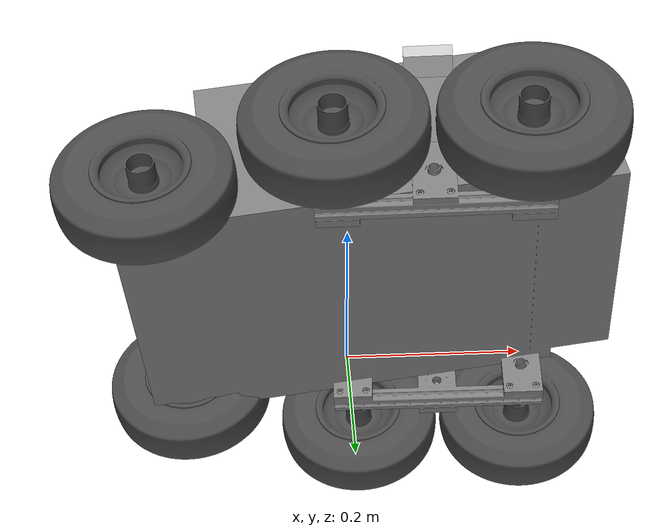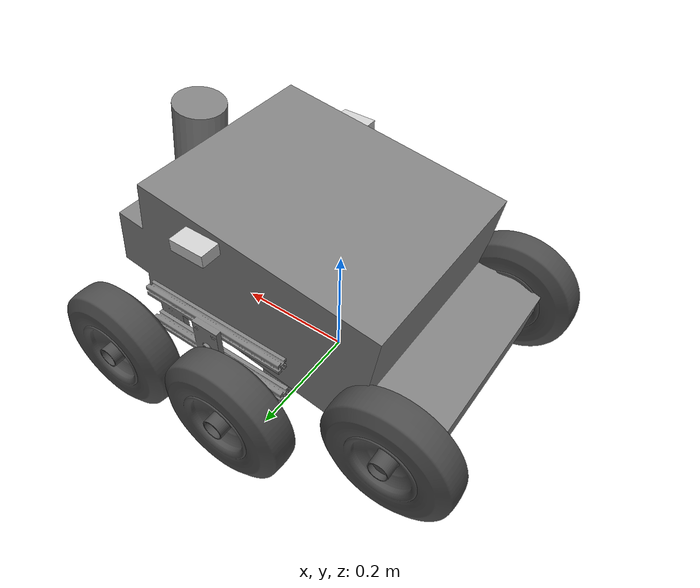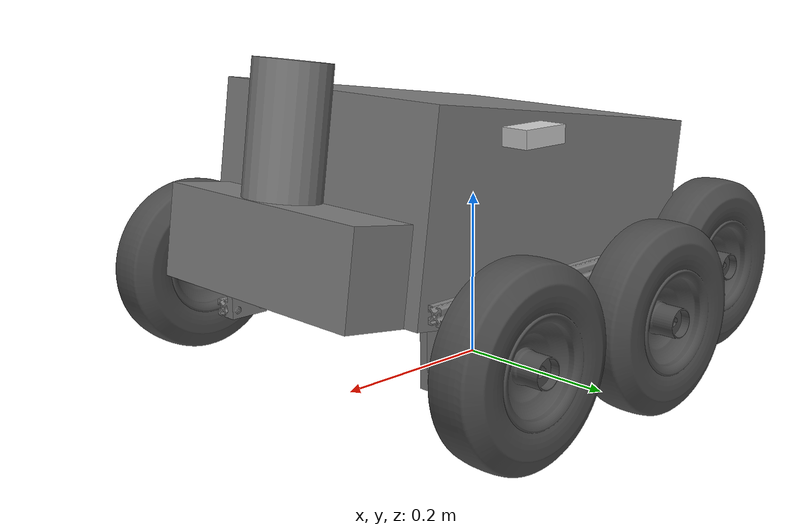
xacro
<?xml version="1.0"?>
<robot xmlns:xacro="http://ros.org/wiki/xacro"
       xmlns:controller="http://playerstage.sourceforge.net/gazebo/xmlschema/#controller"
       xmlns:interface="http://playerstage.sourceforge.net/gazebo/xmlschema/#interface"
       xmlns:sensor="http://playerstage.sourceforge.net/gazebo/xmlschema/#sensor"
       name="pluto">

  <xacro:include filename="$(find uos_common_urdf)/common.xacro" />
  <xacro:include filename="$(find uos_common_urdf)/urdf/imu.gazebo.urdf.xacro" />
  <!--xacro:include filename="$(find riegl_driver)/urdf/riegl_vz400i_mount.urdf.xacro" /-->
  <xacro:include filename="$(find pluto_description)/urdf/wheel.urdf.xacro" />

  <xacro:property name="M_PI" value="3.14159265359"/>

  <xacro:property name="footprint_to_base_rpy_p" value="-0.142"/>

  <xacro:property name="imu_stdev" value="0.00017" />

  <xacro:property name="body_height" value="0.21"/>
  <xacro:property name="body_length" value="0.592"/>
  <xacro:property name="body_width" value="0.29"/>

  <xacro:property name="horizontal_lever_height" value="0.09"/>
  <xacro:property name="horizontal_lever_length" value="0.266"/>
  <xacro:property name="horizontal_lever_thickness" value="0.04"/>
  <xacro:property name="horizontal_lever_mass" value="0.1"/>

  <xacro:property name="vertical_lever_height" value="0.21"/>
  <xacro:property name="vertical_lever_width" value="0.09"/>

  <xacro:property name="bearing_pos_wheel_1" value="0.047"/>
  <xacro:property name="bearing_pos_wheel_2_3" value="0.075"/>

  <xacro:property name="bearing_width" value="0.05"/>
  <xacro:property name="bearing_height" value="0.09"/>
  <xacro:property name="bearing_thickness" value="0.01"/>

  <xacro:property name="pannel_length" value="0.32"/>
  <xacro:property name="pannel_height" value="0.09"/>
  <xacro:property name="pannel_depth" value="0.082"/>

  <xacro:property name="riegl_vz400i_offset_x"
    value="${body_width/2 - 0.1}"/>
  <xacro:property name="riegl_vz400i_offset_y"
    value="0"/>
  <xacro:property name="riegl_vz400i_offset_z"
    value="${body_height/2-0.014 + 0.012}"/>

  <xacro:property name="velodyne_height" value="0.1442"/>
  <xacro:property name="velodyne_radius" value="0.04265"/>

  <xacro:property name="velodyne_height_to_lense" value="0.090805"/>
  <xacro:property name="velodyne_offset_x" value="${body_length/2 - 0.0265 + 0.02}"/>
  <xacro:property name="velodyne_offset_y" value="0"/>
  <xacro:property name="velodyne_offset_z"
    value="${-0.005 + velodyne_height/2}"/>

  <xacro:property name="virtual_axis_left_offset_x"
    value="${body_length/2 - pannel_depth-bearing_pos_wheel_2_3
      - bearing_height/2}"/>
  <xacro:property name="virtual_axis_left_offset_y"
    value="${body_width/2 + 0.03}" />
  <xacro:property name="virtual_axis_left_offset_z"
    value="${body_height/2-(vertical_lever_height + 0.03
      - bearing_width/2)}" />

  <xacro:property name="virtual_axis_right_offset_x"
    value="${body_length/2 - pannel_depth - bearing_pos_wheel_2_3
      - bearing_height/2}"/>
  <xacro:property name="virtual_axis_right_offset_y"
    value="${-(body_width/2 + 0.03)}"/>
  <xacro:property name="virtual_axis_right_offset_z"
    value="${body_height/2 -(vertical_lever_height + 0.03
      - bearing_width/2)}"/>

  <xacro:property name="axis_length" value="0.47" />
  <xacro:property name="turning_adaptation" value="0.95" />

  <xacro:property name="body_mass" value="40.0"/>
  <xacro:property name="wheel_mass" value="3.0"/>
  <xacro:property name="wheel_radius" value="0.103"/>
  <xacro:property name="wheel_thickness" value="0.065"/>

  <xacro:property name="imu_center_offset_x" value="${body_length/2 - 0.285}"/>
  <xacro:property name="imu_center_offset_y" value="0"/>
  <xacro:property name="imu_center_offset_z" value="${- body_height/2 + 0.03}"/>

  <xacro:property name="imu_left_offset_x" value="0.1"/>
  <xacro:property name="imu_left_offset_y" value="0.2"/>
  <xacro:property name="imu_left_offset_z" value="0.05"/>

  <xacro:property name="imu_right_offset_x" value="0.1"/>
  <xacro:property name="imu_right_offset_y" value="-0.2"/>
  <xacro:property name="imu_right_offset_z" value="0.05"/>

  <link name="base_footprint"/>
  <link name="base_link">
    <visual>
      <origin xyz="0 0 0" rpy="0 0 0" />
      <geometry>
        <mesh filename="package://pluto_description/meshes/pluto_base.stl"/>
      </geometry>
      <material name="silver" >
        <color rgba="0.5 0.5 0.5 1" />
        <ambient>0.5 0.5 0.5 1</ambient>
        <diffuse>0.5 0.5 0.5 1</diffuse>
        <specular>0 0 0 0</specular>
        <emissive>0 0 0 1</emissive>
      </material>
    </visual>
    <collision>
      <origin xyz="0 0 0" rpy="0 0 0" />
      <geometry>
        <mesh filename="package://pluto_description/meshes/pluto_base_collision.stl"/>
      </geometry>
    </collision>
    <xacro:box_inertial
      x="${body_length}"
      y="${body_width}"
      z="${body_height}"
      mass="${body_mass}"/>
  </link>

  <gazebo reference="base_link">
    <material>Gazebo/GreyTransparent</material>
  </gazebo>

  <joint name="base_footprint_to_base_joint" type="fixed">
    <!-- origin xyz="0 0 0.2" rpy="0 ${-M_PI/18.0} 0" /-->
    <origin xyz="0 0 0.2" rpy="0 ${footprint_to_base_rpy_p} 0" />
    <parent link="base_footprint"/>
    <child link="base_link" />
  </joint>

  <!--Virtual Axis Macro-->

  <xacro:macro name="virtual_axis" params="side xyz rot">
    <link name="virtual_axis_${side}">
      <visual>
        <origin xyz="0 0 0" rpy="0 0 ${rot}" />
        <geometry>
          <mesh filename="package://pluto_description/meshes/pluto_lever.stl"/>
        </geometry>
        <material name="silver" >
          <color rgba="0.5 0.5 0.5 1" />
        </material>
      </visual>
      <collision>
        <origin xyz="0 0 0" rpy="0 0 ${rot}" />
        <geometry>
          <mesh filename="package://pluto_description/meshes/pluto_lever_collision.stl"/>
        </geometry>
      </collision>
      <xacro:box_inertial
        x="${horizontal_lever_length}"
        y="${horizontal_lever_thickness}"
        z="${horizontal_lever_height}"
        mass="${horizontal_lever_mass}"/>
    </link>

    <gazebo reference="virtual_axis_${side}">
      <material>Gazebo/GreyTransparent</material>
    </gazebo>

    <joint name="virtual_${side}_to_base_joint" type="revolute">
      <origin xyz="${xyz}"
        rpy="0 ${-footprint_to_base_rpy_p} 0" />
      <axis xyz="0 1 0"/>
      <limit effort="1000" lower="-0.4" upper="0.4" velocity="10"/>
      <parent link="base_link"/>
      <child link="virtual_axis_${side}"/>
    </joint>
  </xacro:macro>
  <!-- set initial rot to  footprint_to_base_rpy_p -->
  <xacro:virtual_axis
    side="left"
    xyz=" ${virtual_axis_left_offset_x}
          ${virtual_axis_left_offset_y}
          ${virtual_axis_left_offset_z}"
    rot="${M_PI}"/>

  <xacro:virtual_axis
    side="right"
    xyz=" ${virtual_axis_right_offset_x}
          ${virtual_axis_right_offset_y}
          ${virtual_axis_right_offset_z}"
    rot="0"/>

  <xacro:pluto_wheel name="left_front_wheel" parent="virtual_axis_left">
    <origin xyz="0.1075 0.095 0" rpy="0 0 0" />
  </xacro:pluto_wheel>

  <xacro:pluto_wheel name="left_middle_wheel" parent="virtual_axis_left">
    <origin xyz="-0.1075 0.095 0" rpy="0 0 0 "/>
  </xacro:pluto_wheel>

  <xacro:pluto_wheel name="left_rear_wheel" parent="base_link">
    <origin xyz="-0.23 0.19 ${(-body_height/2.0)+(bearing_height/2.0)}" rpy="0 0 0" />
  </xacro:pluto_wheel>

  <xacro:pluto_wheel name="right_front_wheel" parent="virtual_axis_right">
    <origin xyz="0.1075 -0.095 0" rpy="0 0 0" />
  </xacro:pluto_wheel>

  <xacro:pluto_wheel name="right_middle_wheel" parent="virtual_axis_right">
    <origin xyz="-0.1075 -0.095 0" rpy="0 0 0" />
  </xacro:pluto_wheel>

  <xacro:pluto_wheel name="right_rear_wheel" parent="base_link">
    <origin xyz="-0.23 -0.19 ${(-body_height/2.0)+(bearing_height/2.0)}" rpy="0 0 0" />
  </xacro:pluto_wheel>

  <link name="imu_center">
    <visual>
      <origin xyz="0 0 0" rpy="0 0 0" />
      <geometry>
        <box size="0.06 0.06 0.02"/>
      </geometry>
      <material name="white" >
        <color rgba="0.8 0.8 0.8 1" />
      </material>
    </visual>

  </link>

  <joint name="imu_center_to_base_joint" type="fixed">
    <parent link="base_link" />
    <child link="imu_center" />
    <origin
      xyz=" ${imu_center_offset_x}
            ${imu_center_offset_y}
            ${imu_center_offset_z}"
            rpy="${M_PI} 0 ${M_PI/2.0}" />
   <!-- TODO: test -->
  </joint>

  <link name="imu_left">
    <visual>
      <origin xyz="0 0 0" rpy="0 0 0" />
      <geometry>
        <box size="0.06 0.06 0.02"/>
      </geometry>
      <material name="white" >
        <color rgba="0.8 0.8 0.8 1" />
      </material>
    </visual>
  </link>

  <!-- phidgets driver solution for left to right handed coordinates : multiply a -1 to every axis -->

  <joint name="imu_left_to_base_joint" type="fixed">
    <parent link="virtual_axis_left" />
    <child link="imu_left" />
    <origin
      xyz="0 0 0.2"
      rpy="0 0 0" />
  </joint>

  <link name="imu_right">
    <visual>
      <origin xyz="0 0 0" rpy="0 0 0" />
      <geometry>
        <box size="0.06 0.06 0.02"/>
      </geometry>
      <material name="white" >
        <color rgba="0.8 0.8 0.8 1" />
      </material>
    </visual>

  </link>

  <joint name="imu_right_to_base_joint" type="fixed">
    <parent link="virtual_axis_right" />
    <child link="imu_right" />
    <origin
      xyz="0 0 0.2"
      rpy="0 0 0" />
  </joint>

  <!-- inertial measurement unit for gazebo -->
  <xacro:imu_gazebo link="imu_center" imu_topic="imu/data" update_rate="100.0" stdev="${imu_stdev}" />

  <link name="velodyne">
    <visual>
      <origin xyz="0 0 ${-velodyne_height_to_lense}" rpy="0 0 0" />
      <geometry>
        <cylinder length="0.1442" radius="0.04265"/>
      </geometry>
      <material name="silver">
        <color rgba="0.5 0.5 0.5 1" />
      </material>
    </visual>
  </link>

  <joint name="velodyne_to_base_joint" type="fixed">
    <child link="velodyne" />
    <parent link="base_link" />
    <origin
      xyz=" ${velodyne_offset_x}
            ${velodyne_offset_y}
            ${velodyne_offset_z + velodyne_height_to_lense}"
      rpy="0 0 0" />
  </joint>

  <!-- GPS Sensor -->

  <gazebo reference="velodyne">
    <sensor name="velodyne" type="ray">
      <always_on>true</always_on>
      <update_rate>5</update_rate>
      <visualize>false</visualize>
      <ray>
        <scan>
          <horizontal>
            <samples>360</samples>
            <resolution>1</resolution>
            <min_angle>-3.14159</min_angle>
            <max_angle>3.14159</max_angle>
          </horizontal>
          <vertical>
            <samples>3</samples>
            <resolution>1</resolution>
            <min_angle>-0.43284</min_angle>
            <max_angle>0.03490</max_angle>
          </vertical>
        </scan>
        <range>
          <min>0.22</min>
          <max>50</max>
          <resolution>0.02</resolution>
        </range>
      </ray>
      <plugin name="laser_controller" filename="libgazebo_ros_block_laser.so">
        <frameName>velodyne</frameName>
        <topicName>velodyne</topicName>
        <gaussianNoise>0.02</gaussianNoise>
        <updateRate>5</updateRate>
      </plugin>
    </sensor>
  </gazebo>

  <gazebo>
    <plugin name="novatel_gps_sim" filename="libhector_gazebo_ros_gps.so">
      <frameId>odom_combined</frameId>
      <alwaysOn>1</alwaysOn>
      <updateRate>10.0</updateRate>
      <bodyName>base_footprint</bodyName>
      <topicName>gps/fix</topicName>
      <velocityTopicName>gps/fix_velocity</velocityTopicName>
      <drift>1.0 1.0 1.0</drift>
      <gaussianNoise>0.1 0.1 0.1</gaussianNoise>
      <velocityDrift>0 0 0</velocityDrift>
      <velocityGaussianNoise>0.1 0.1 0.1</velocityGaussianNoise>
    </plugin>
  </gazebo>

  <!-- publish ground truth for pose of base_footprint -->
  <gazebo>
    <plugin name="base_footprint_controller" filename="libgazebo_ros_p3d.so">
      <alwaysOn>true</alwaysOn>
      <updateRate>30.0</updateRate>
      <bodyName>base_footprint</bodyName>
      <topicName>gazebo_odom</topicName>
      <gaussianNoise>1.0e-40</gaussianNoise>
      <frameName>map</frameName>
      <interface:position name="base_footprint_p3d_position_iface" />
    </plugin>
  </gazebo>

  <xacro:macro name="simple_transmission" params="name">
    <transmission name="${name}_trans">
      <type>transmission_interface/SimpleTransmission</type>
      <joint name="${name}_joint">
        <hardwareInterface>hardware_interface/EffortJointInterface</hardwareInterface>
      </joint>
      <actuator name="${name}_motor">
        <hardwareInterface>hardware_interface/EffortJointInterface</hardwareInterface>
        <mechanicalReduction>1</mechanicalReduction>
      </actuator>
    </transmission>
  </xacro:macro>

  <xacro:simple_transmission name="virtual_left_to_base" />
  <xacro:simple_transmission name="virtual_right_to_base" />

  <gazebo>
    <plugin name="gazebo_ros_control" filename="libgazebo_ros_control.so">
    </plugin>
  </gazebo>

</robot>

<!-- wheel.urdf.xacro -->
<robot xmlns:xacro="http://ros.org/wiki/xacro" name="pluto_wheel">
    <xacro:macro name="pluto_wheel" params="name parent *joint_pose">
        <link name="${name}_link">

            <visual>
                <origin xyz="0 0 0" rpy="0 0 0" />
                <geometry>
                    <mesh filename="package://pluto_description/meshes/pluto_wheel.stl"/>
                </geometry>
            </visual>

            <collision>
                <origin xyz="0 0 0" rpy="${M_PI/2} 0 0" />
                <geometry>
                    <cylinder length="${wheel_thickness}" radius="${wheel_radius}"/>
                    <!--mesh filename="package://pluto_description/meshes/pluto_wheel.stl"/-->
                </geometry>
            </collision>

            <xacro:cylinder_inertial_with_origin radius="${wheel_radius}" length="${wheel_thickness}" mass="${wheel_mass}">
                <origin xyz="0 0 0" rpy="${M_PI/2} 0 0"/>
            </xacro:cylinder_inertial_with_origin>
        </link>

        <gazebo reference="${name}_link">
            <mu1 value="1.0"/>
            <mu2 value="1.0"/>
            <kp value="10000000.0" />
            <kd value="1.0" />
            <fdir1 value="1 0 0"/>
            <material>Gazebo/DarkGrey</material>
        </gazebo>

        <joint name="${name}" type="continuous">
            <parent link="${parent}"/>
            <child link="${name}_link"/>
            <xacro:insert_block name="joint_pose"/>
            <axis xyz="0 1 0" rpy="0 0 0" />
        </joint>

        <transmission name="${name}_trans" type="SimpleTransmission">
            <type>transmission_interface/SimpleTransmission</type>
            <actuator name="${name}_motor">
                <mechanicalReduction>7</mechanicalReduction>
                <hardwareInterface>VelocityJointInterface</hardwareInterface>
            </actuator>
            <joint name="${name}">
                <hardwareInterface>hardware_interface/VelocityJointInterface</hardwareInterface>
            </joint>
        </transmission>
    </xacro:macro>
</robot>
